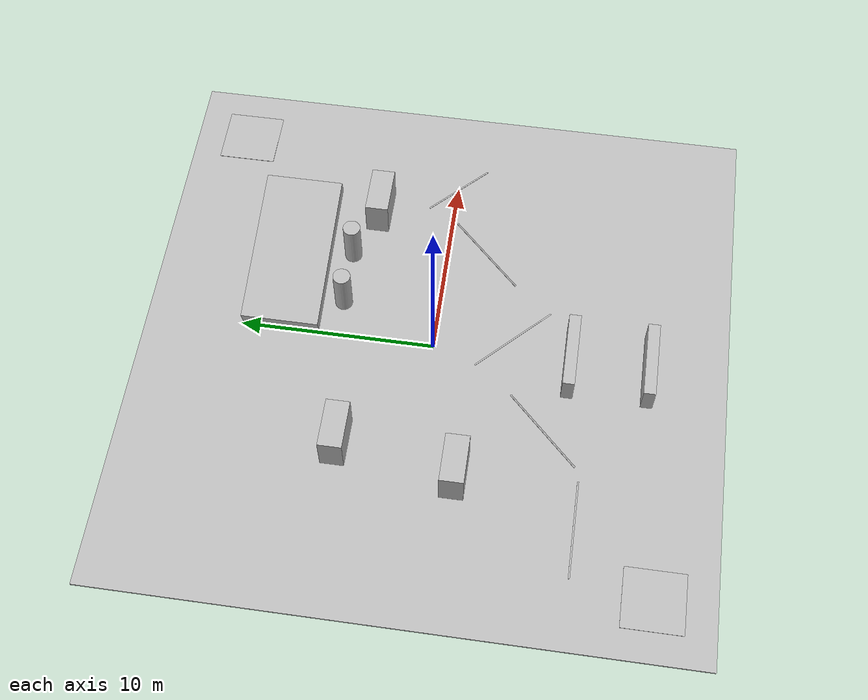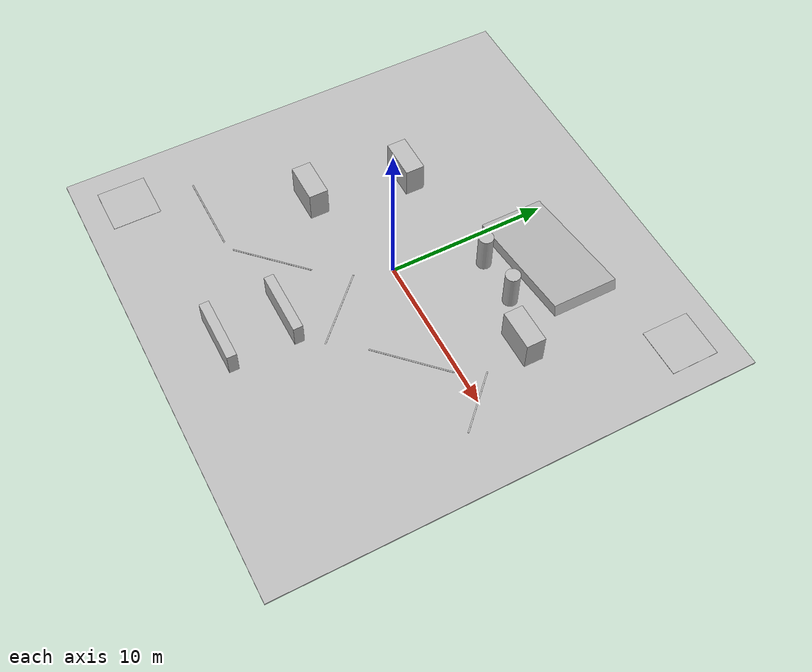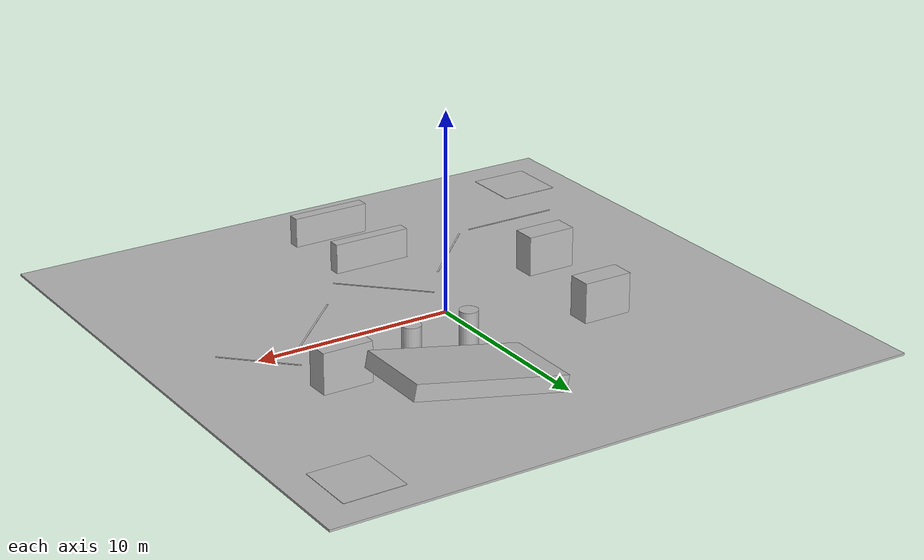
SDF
<?xml version="1.0" ?>
<sdf version="1.9">

  <world name="navigrid_world">

    <!-- =========================================================
         GAZEBO SYSTEMS
         ========================================================= -->

    <plugin
      filename="gz-sim-sensors-system"
      name="gz::sim::systems::Sensors">
      <render_engine>ogre2</render_engine>
    </plugin>

    <gravity>0 0 -9.81</gravity>

    <physics name="default_physics" type="ode">
      <max_step_size>0.001</max_step_size>
      <real_time_factor>1</real_time_factor>
      <real_time_update_rate>1000</real_time_update_rate>
    </physics>

    <!-- =========================================================
         SCENE
         ========================================================= -->

    <scene>
      <ambient>0.45 0.45 0.45 1</ambient>
      <background>0.70 0.70 0.70 1</background>
      <shadows>true</shadows>
    </scene>

    <!-- =========================================================
         SUN
         ========================================================= -->

    <light name="sun" type="directional">

      <cast_shadows>true</cast_shadows>

      <pose>0 0 20 0 0 0</pose>

      <diffuse>0.8 0.8 0.8 1</diffuse>

      <specular>0.2 0.2 0.2 1</specular>

      <direction>-0.5 0.5 -1</direction>

    </light>

    <!-- =========================================================
         30m x 30m ARENA FLOOR
         ========================================================= -->

    <model name="arena_floor">

      <static>true</static>

      <link name="floor">

        <collision name="collision">

          <geometry>

            <box>
              <size>30 30 0.1</size>
            </box>

          </geometry>

        </collision>

        <visual name="visual">

          <geometry>

            <box>
              <size>30 30 0.1</size>
            </box>

          </geometry>

        </visual>

      </link>

      <pose>0 0 -0.05 0 0 0</pose>

    </model>

    <!-- =========================================================
         RAMP A -> B
         8m LONG
         4m WIDE
         ========================================================= -->

    <model name="ramp_A_to_B">

      <static>true</static>

      <link name="ramp_link">

        <collision name="ramp_collision">

          <geometry>

            <box>
              <size>8 4 0.8</size>
            </box>

          </geometry>

        </collision>

        <visual name="ramp_visual">

          <geometry>

            <box>
              <size>8 4 0.8</size>
            </box>

          </geometry>

        </visual>

      </link>

      <!--
        Ramp approximately 11.5 degrees.
        Low end begins close to ground.
      -->

      <pose>
        4 8 1.19
        0 -0.20 0
      </pose>

    </model>

    <!-- =========================================================
         ZIG-ZAG ROUTE
         Visual route markers on ground
         ========================================================= -->

    <model name="zigzag_segment_1">

      <static>true</static>

      <link name="segment">

        <visual name="visual">

          <geometry>

            <box>
              <size>5 0.08 0.02</size>
            </box>

          </geometry>

        </visual>

      </link>

      <pose>-9 -8 0.02 0 0 0.0</pose>

    </model>

    <model name="zigzag_segment_2">

      <static>true</static>

      <link name="segment">

        <visual name="visual">

          <geometry>

            <box>
              <size>5 0.08 0.02</size>
            </box>

          </geometry>

        </visual>

      </link>

      <pose>-4 -6 0.02 0 0 0.785</pose>

    </model>

    <model name="zigzag_segment_3">

      <static>true</static>

      <link name="segment">

        <visual name="visual">

          <geometry>

            <box>
              <size>5 0.08 0.02</size>
            </box>

          </geometry>

        </visual>

      </link>

      <pose>1 -4 0.02 0 0 -0.785</pose>

    </model>

    <model name="zigzag_segment_4">

      <static>true</static>

      <link name="segment">

        <visual name="visual">

          <geometry>

            <box>
              <size>5 0.08 0.02</size>
            </box>

          </geometry>

        </visual>

      </link>

      <pose>6 -2 0.02 0 0 0.785</pose>

    </model>

    <model name="zigzag_segment_5">

      <static>true</static>

      <link name="segment">

        <visual name="visual">

          <geometry>

            <box>
              <size>4 0.08 0.02</size>
            </box>

          </geometry>

        </visual>

      </link>

      <pose>10 0 0.02 0 0 -0.785</pose>

    </model>

    <!-- =========================================================
         RACK OBSTACLE 1
         ========================================================= -->

    <model name="rack_1">

      <static>true</static>

      <link name="rack_link">

        <collision name="collision">

          <geometry>

            <box>
              <size>2.5 1.2 2.0</size>
            </box>

          </geometry>

        </collision>

        <visual name="visual">

          <geometry>

            <box>
              <size>2.5 1.2 2.0</size>
            </box>

          </geometry>

        </visual>

      </link>

      <pose>-6 4 1.0 0 0 0</pose>

    </model>

    <!-- =========================================================
         RACK OBSTACLE 2
         ========================================================= -->

    <model name="rack_2">

      <static>true</static>

      <link name="rack_link">

        <collision name="collision">

          <geometry>

            <box>
              <size>2.5 1.2 2.0</size>
            </box>

          </geometry>

        </collision>

        <visual name="visual">

          <geometry>

            <box>
              <size>2.5 1.2 2.0</size>
            </box>

          </geometry>

        </visual>

      </link>

      <pose>8 4 1.0 0 0 0</pose>

    </model>

    <!-- =========================================================
         RACK OBSTACLE 3
         ========================================================= -->

    <model name="rack_3">

      <static>true</static>

      <link name="rack_link">

        <collision name="collision">

          <geometry>

            <box>
              <size>2.5 1.2 2.0</size>
            </box>

          </geometry>

        </collision>

        <visual name="visual">

          <geometry>

            <box>
              <size>2.5 1.2 2.0</size>
            </box>

          </geometry>

        </visual>

      </link>

      <pose>-7 -2 1.0 0 0 0</pose>

    </model>

    <!-- =========================================================
         PILLAR 1
         ========================================================= -->

    <model name="pillar_1">

      <static>true</static>

      <link name="pillar_link">

        <collision name="collision">

          <geometry>

            <cylinder>
              <radius>0.45</radius>
              <length>2.5</length>
            </cylinder>

          </geometry>

        </collision>

        <visual name="visual">

          <geometry>

            <cylinder>
              <radius>0.45</radius>
              <length>2.5</length>
            </cylinder>

          </geometry>

        </visual>

      </link>

      <pose>2 5 1.25 0 0 0</pose>

    </model>

    <!-- =========================================================
         PILLAR 2
         ========================================================= -->

    <model name="pillar_2">

      <static>true</static>

      <link name="pillar_link">

        <collision name="collision">

          <geometry>

            <cylinder>
              <radius>0.45</radius>
              <length>2.5</length>
            </cylinder>

          </geometry>

        </collision>

        <visual name="visual">

          <geometry>

            <cylinder>
              <radius>0.45</radius>
              <length>2.5</length>
            </cylinder>

          </geometry>

        </visual>

      </link>

      <pose>5 5 1.25 0 0 0</pose>

    </model>

    <!-- =========================================================
         CHOKEPOINT LEFT BARRIER
         ========================================================= -->

    <model name="chokepoint_left">

      <static>true</static>

      <link name="barrier_link">

        <collision name="collision">

          <geometry>

            <box>
              <size>4 0.6 1.5</size>
            </box>

          </geometry>

        </collision>

        <visual name="visual">

          <geometry>

            <box>
              <size>4 0.6 1.5</size>
            </box>

          </geometry>

        </visual>

      </link>

      <pose>0 -7 0.75 0 0 0</pose>

    </model>

    <!-- =========================================================
         CHOKEPOINT RIGHT BARRIER
         ========================================================= -->

    <model name="chokepoint_right">

      <static>true</static>

      <link name="barrier_link">

        <collision name="collision">

          <geometry>

            <box>
              <size>4 0.6 1.5</size>
            </box>

          </geometry>

        </collision>

        <visual name="visual">

          <geometry>

            <box>
              <size>4 0.6 1.5</size>
            </box>

          </geometry>

        </visual>

      </link>

      <pose>0 -11 0.75 0 0 0</pose>

    </model>

    <!-- =========================================================
         START AREA MARKER
         ========================================================= -->

    <model name="start_area">

      <static>true</static>

      <link name="marker">

        <visual name="visual">

          <geometry>

            <box>
              <size>3 3 0.02</size>
            </box>

          </geometry>

        </visual>

      </link>

      <pose>-12 -12 0.02 0 0 0</pose>

    </model>

    <!-- =========================================================
         GOAL AREA MARKER
         ========================================================= -->

    <model name="goal_area">

      <static>true</static>

      <link name="marker">

        <visual name="visual">

          <geometry>

            <box>
              <size>3 3 0.02</size>
            </box>

          </geometry>

        </visual>

      </link>

      <pose>12 12 0.02 0 0 0</pose>

    </model>

  </world>

</sdf>
